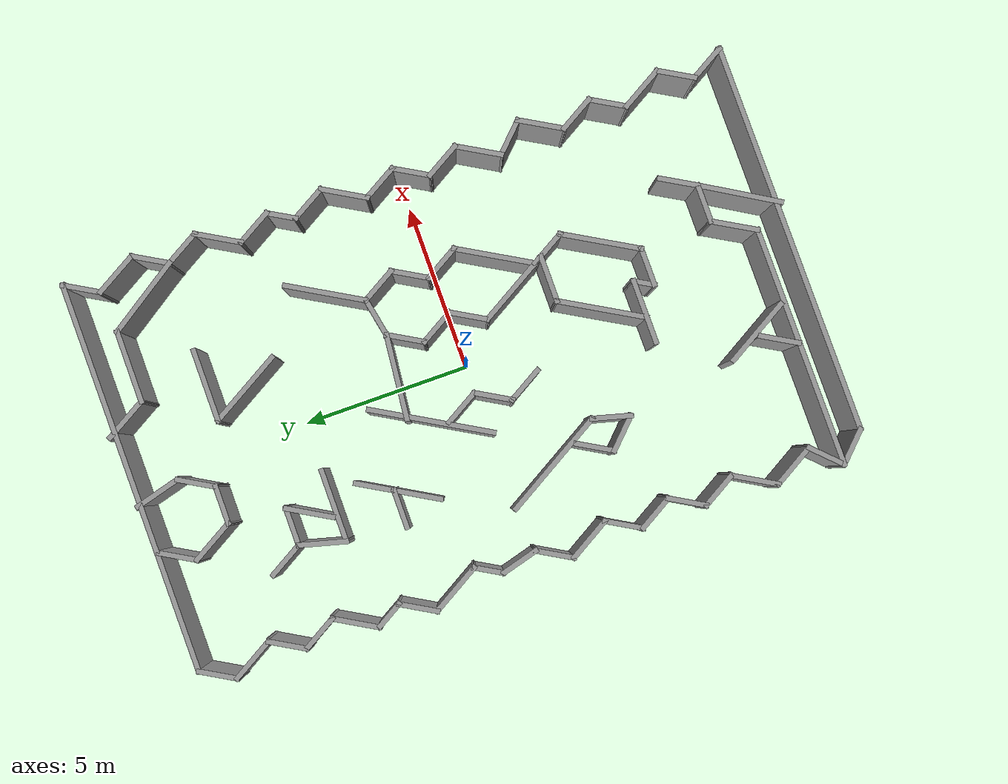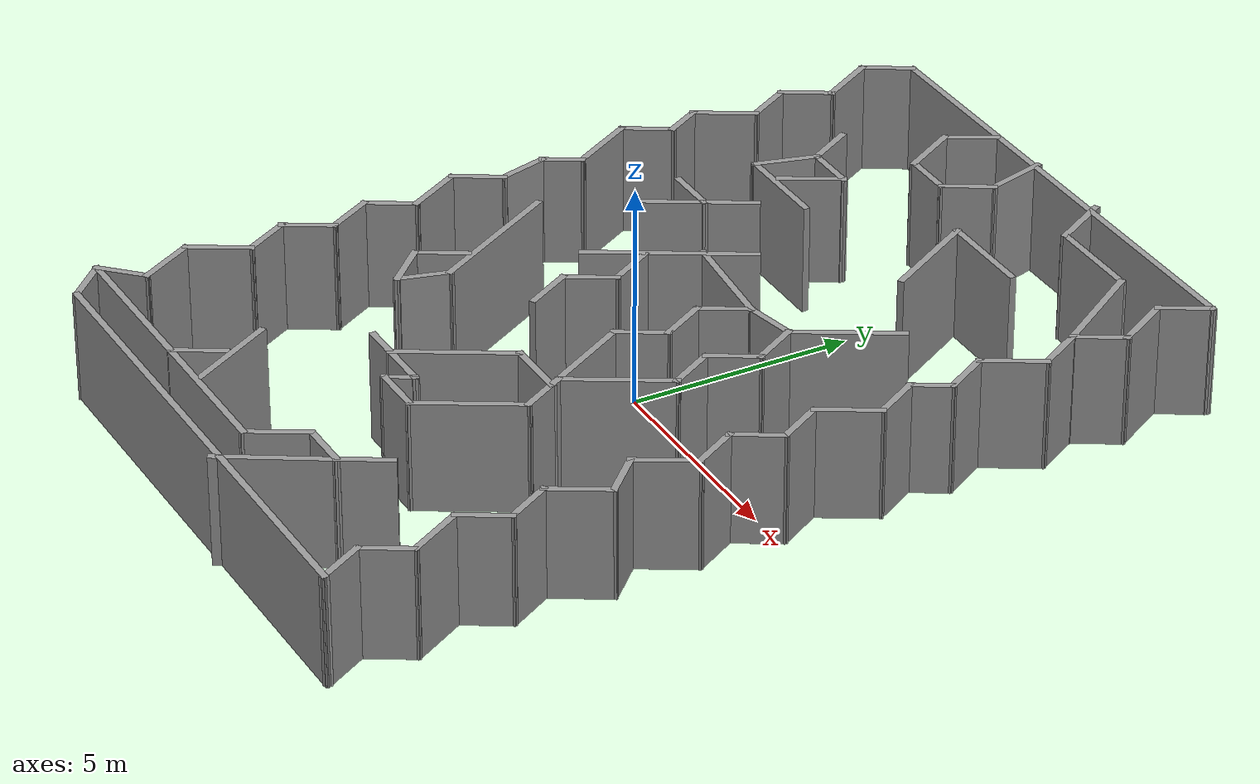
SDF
<sdf version="1.7">
 <model name="maze1">
  <pose>-0.150356 0.100661 0 0 -0 0</pose>
  <link name="Wall_0">
   <collision name="Wall_0_Collision">
    <geometry><box><size>1.25 0.15 2.5</size></box></geometry>
    <pose>0 0 1.25 0 -0 0</pose>
   </collision>
   <visual name="Wall_0_Visual">
    <pose>0 0 1.25 0 -0 0</pose>
    <geometry><box><size>1.25 0.15 2.5</size></box></geometry>
    <material>
     <script><uri>file://media/materials/scripts/gazebo.material</uri><name>Gazebo/Grey</name></script>
     <ambient>1 1 1 1</ambient>
    </material>
    <meta><layer>0</layer></meta>
   </visual>
   <pose>5.80344 9.50329 0 0 -0 -2.0944</pose>
  </link>
  <link name="Wall_1">
   <collision name="Wall_1_Collision">
    <geometry><box><size>1.5 0.15 2.5</size></box></geometry>
    <pose>0 0 1.25 0 -0 0</pose>
   </collision>
   <visual name="Wall_1_Visual">
    <pose>0 0 1.25 0 -0 0</pose>
    <geometry><box><size>1.5 0.15 2.5</size></box></geometry>
    <material>
     <script><uri>file://media/materials/scripts/gazebo.material</uri><name>Gazebo/Grey</name></script>
     <ambient>1 1 1 1</ambient>
    </material>
    <meta><layer>0</layer></meta>
   </visual>
   <pose>5.86594 8.44241 0 0 -0 -1.0472</pose>
  </link>
  <link name="Wall_10">
   <collision name="Wall_10_Collision">
    <geometry><box><size>1.25 0.15 2.5</size></box></geometry>
    <pose>0 0 1.25 0 -0 0</pose>
   </collision>
   <visual name="Wall_10_Visual">
    <pose>0 0 1.25 0 -0 0</pose>
    <geometry><box><size>1.25 0.15 2.5</size></box></geometry>
    <material>
     <script><uri>file://media/materials/scripts/gazebo.material</uri><name>Gazebo/Grey</name></script>
     <ambient>1 1 1 1</ambient>
    </material>
    <meta><layer>0</layer></meta>
   </visual>
   <pose>5.80344 -0.455997 0 0 -0 -2.0944</pose>
  </link>
  <link name="Wall_100">
   <collision name="Wall_100_Collision">
    <geometry><box><size>1.25 0.15 2.5</size></box></geometry>
    <pose>0 0 1.25 0 -0 0</pose>
   </collision>
   <visual name="Wall_100_Visual">
    <pose>0 0 1.25 0 -0 0</pose>
    <geometry><box><size>1.25 0.15 2.5</size></box></geometry>
    <material>
     <script><uri>file://media/materials/scripts/gazebo.material</uri><name>Gazebo/Grey</name></script>
     <ambient>1 1 1 1</ambient>
    </material>
    <meta><layer>0</layer></meta>
   </visual>
   <pose>-1.03557 -1.4542 0 0 -0 2.0944</pose>
  </link>
  <link name="Wall_101">
   <collision name="Wall_101_Collision">
    <geometry><box><size>1.25 0.15 2.5</size></box></geometry>
    <pose>0 0 1.25 0 -0 0</pose>
   </collision>
   <visual name="Wall_101_Visual">
    <pose>0 0 1.25 0 -0 0</pose>
    <geometry><box><size>1.25 0.15 2.5</size></box></geometry>
    <material>
     <script><uri>file://media/materials/scripts/gazebo.material</uri><name>Gazebo/Grey</name></script>
     <ambient>1 1 1 1</ambient>
    </material>
    <meta><layer>0</layer></meta>
   </visual>
   <pose>-1.03557 -0.501571 0 0 -0 1.0472</pose>
  </link>
  <link name="Wall_102">
   <collision name="Wall_102_Collision">
    <geometry><box><size>1.25 0.15 2.5</size></box></geometry>
    <pose>0 0 1.25 0 -0 0</pose>
   </collision>
   <visual name="Wall_102_Visual">
    <pose>0 0 1.25 0 -0 0</pose>
    <geometry><box><size>1.25 0.15 2.5</size></box></geometry>
    <material>
     <script><uri>file://media/materials/scripts/gazebo.material</uri><name>Gazebo/Grey</name></script>
     <ambient>1 1 1 1</ambient>
    </material>
    <meta><layer>0</layer></meta>
   </visual>
   <pose>-1.03557 0.451057 0 0 -0 2.0944</pose>
  </link>
  <link name="Wall_104">
   <collision name="Wall_104_Collision">
    <geometry><box><size>2.60674 0.15 2.5</size></box></geometry>
    <pose>0 0 1.25 0 -0 0</pose>
   </collision>
   <visual name="Wall_104_Visual">
    <pose>0 0 1.25 0 -0 0</pose>
    <geometry><box><size>2.60674 0.15 2.5</size></box></geometry>
    <material>
     <script><uri>file://media/materials/scripts/gazebo.material</uri><name>Gazebo/Grey</name></script>
     <ambient>1 1 1 1</ambient>
    </material>
    <meta><layer>0</layer></meta>
   </visual>
   <pose>0.41476 1.89772 0 0 -0 -0.102998</pose>
  </link>
  <link name="Wall_106">
   <collision name="Wall_106_Collision">
    <geometry><box><size>1.25 0.15 2.5</size></box></geometry>
    <pose>0 0 1.25 0 -0 0</pose>
   </collision>
   <visual name="Wall_106_Visual">
    <pose>0 0 1.25 0 -0 0</pose>
    <geometry><box><size>1.25 0.15 2.5</size></box></geometry>
    <material>
     <script><uri>file://media/materials/scripts/gazebo.material</uri><name>Gazebo/Grey</name></script>
     <ambient>1 1 1 1</ambient>
    </material>
    <meta><layer>0</layer></meta>
   </visual>
   <pose>-3.14158 3.04755 0 0 -0 0</pose>
  </link>
  <link name="Wall_107">
   <collision name="Wall_107_Collision">
    <geometry><box><size>1.25 0.15 2.5</size></box></geometry>
    <pose>0 0 1.25 0 -0 0</pose>
   </collision>
   <visual name="Wall_107_Visual">
    <pose>0 0 1.25 0 -0 0</pose>
    <geometry><box><size>1.25 0.15 2.5</size></box></geometry>
    <material>
     <script><uri>file://media/materials/scripts/gazebo.material</uri><name>Gazebo/Grey</name></script>
     <ambient>1 1 1 1</ambient>
    </material>
    <meta><layer>0</layer></meta>
   </visual>
   <pose>-2.31658 3.52386 0 0 -0 1.0472</pose>
  </link>
  <link name="Wall_109">
   <collision name="Wall_109_Collision">
    <geometry><box><size>1.5 0.15 2.5</size></box></geometry>
    <pose>0 0 1.25 0 -0 0</pose>
   </collision>
   <visual name="Wall_109_Visual">
    <pose>0 0 1.25 0 -0 0</pose>
    <geometry><box><size>1.5 0.15 2.5</size></box></geometry>
    <material>
     <script><uri>file://media/materials/scripts/gazebo.material</uri><name>Gazebo/Grey</name></script>
     <ambient>1 1 1 1</ambient>
    </material>
    <meta><layer>0</layer></meta>
   </visual>
   <pose>-2.92908 2.46298 0 0 -0 -2.0944</pose>
  </link>
  <link name="Wall_11">
   <collision name="Wall_11_Collision">
    <geometry><box><size>1.25 0.15 2.5</size></box></geometry>
    <pose>0 0 1.25 0 -0 0</pose>
   </collision>
   <visual name="Wall_11_Visual">
    <pose>0 0 1.25 0 -0 0</pose>
    <geometry><box><size>1.25 0.15 2.5</size></box></geometry>
    <material>
     <script><uri>file://media/materials/scripts/gazebo.material</uri><name>Gazebo/Grey</name></script>
     <ambient>1 1 1 1</ambient>
    </material>
    <meta><layer>0</layer></meta>
   </visual>
   <pose>5.80344 -1.40863 0 0 -0 -1.0472</pose>
  </link>
  <link name="Wall_12">
   <collision name="Wall_12_Collision">
    <geometry><box><size>1.5 0.15 2.5</size></box></geometry>
    <pose>0 0 1.25 0 -0 0</pose>
   </collision>
   <visual name="Wall_12_Visual">
    <pose>0 0 1.25 0 -0 0</pose>
    <geometry><box><size>1.5 0.15 2.5</size></box></geometry>
    <material>
     <script><uri>file://media/materials/scripts/gazebo.material</uri><name>Gazebo/Grey</name></script>
     <ambient>1 1 1 1</ambient>
    </material>
    <meta><layer>0</layer></meta>
   </visual>
   <pose>5.74094 -2.46951 0 0 -0 -2.0944</pose>
  </link>
  <link name="Wall_13">
   <collision name="Wall_13_Collision">
    <geometry><box><size>1.25 0.15 2.5</size></box></geometry>
    <pose>0 0 1.25 0 -0 0</pose>
   </collision>
   <visual name="Wall_13_Visual">
    <pose>0 0 1.25 0 -0 0</pose>
    <geometry><box><size>1.25 0.15 2.5</size></box></geometry>
    <material>
     <script><uri>file://media/materials/scripts/gazebo.material</uri><name>Gazebo/Grey</name></script>
     <ambient>1 1 1 1</ambient>
    </material>
    <meta><layer>0</layer></meta>
   </visual>
   <pose>5.79235 -3.44298 0 0 -0 -0.785398</pose>
  </link>
  <link name="Wall_14">
   <collision name="Wall_14_Collision">
    <geometry><box><size>1.5 0.15 2.5</size></box></geometry>
    <pose>0 0 1.25 0 -0 0</pose>
   </collision>
   <visual name="Wall_14_Visual">
    <pose>0 0 1.25 0 -0 0</pose>
    <geometry><box><size>1.5 0.15 2.5</size></box></geometry>
    <material>
     <script><uri>file://media/materials/scripts/gazebo.material</uri><name>Gazebo/Grey</name></script>
     <ambient>1 1 1 1</ambient>
    </material>
    <meta><layer>0</layer></meta>
   </visual>
   <pose>5.84376 -4.41646 0 0 -0 -2.0944</pose>
  </link>
  <link name="Wall_15">
   <collision name="Wall_15_Collision">
    <geometry><box><size>1.25 0.15 2.5</size></box></geometry>
    <pose>0 0 1.25 0 -0 0</pose>
   </collision>
   <visual name="Wall_15_Visual">
    <pose>0 0 1.25 0 -0 0</pose>
    <geometry><box><size>1.25 0.15 2.5</size></box></geometry>
    <material>
     <script><uri>file://media/materials/scripts/gazebo.material</uri><name>Gazebo/Grey</name></script>
     <ambient>1 1 1 1</ambient>
    </material>
    <meta><layer>0</layer></meta>
   </visual>
   <pose>5.78126 -5.47734 0 0 -0 -1.0472</pose>
  </link>
  <link name="Wall_16">
   <collision name="Wall_16_Collision">
    <geometry><box><size>1.25 0.15 2.5</size></box></geometry>
    <pose>0 0 1.25 0 -0 0</pose>
   </collision>
   <visual name="Wall_16_Visual">
    <pose>0 0 1.25 0 -0 0</pose>
    <geometry><box><size>1.25 0.15 2.5</size></box></geometry>
    <material>
     <script><uri>file://media/materials/scripts/gazebo.material</uri><name>Gazebo/Grey</name></script>
     <ambient>1 1 1 1</ambient>
    </material>
    <meta><layer>0</layer></meta>
   </visual>
   <pose>5.78126 -6.42997 0 0 -0 -2.0944</pose>
  </link>
  <link name="Wall_17">
   <collision name="Wall_17_Collision">
    <geometry><box><size>1.5 0.15 2.5</size></box></geometry>
    <pose>0 0 1.25 0 -0 0</pose>
   </collision>
   <visual name="Wall_17_Visual">
    <pose>0 0 1.25 0 -0 0</pose>
    <geometry><box><size>1.5 0.15 2.5</size></box></geometry>
    <material>
     <script><uri>file://media/materials/scripts/gazebo.material</uri><name>Gazebo/Grey</name></script>
     <ambient>1 1 1 1</ambient>
    </material>
    <meta><layer>0</layer></meta>
   </visual>
   <pose>5.84376 -7.49085 0 0 -0 -1.0472</pose>
  </link>
  <link name="Wall_18">
   <collision name="Wall_18_Collision">
    <geometry><box><size>1.25 0.15 2.5</size></box></geometry>
    <pose>0 0 1.25 0 -0 0</pose>
   </collision>
   <visual name="Wall_18_Visual">
    <pose>0 0 1.25 0 -0 0</pose>
    <geometry><box><size>1.25 0.15 2.5</size></box></geometry>
    <material>
     <script><uri>file://media/materials/scripts/gazebo.material</uri><name>Gazebo/Grey</name></script>
     <ambient>1 1 1 1</ambient>
    </material>
    <meta><layer>0</layer></meta>
   </visual>
   <pose>5.90626 -8.55173 0 0 -0 -2.0944</pose>
  </link>
  <link name="Wall_19">
   <collision name="Wall_19_Collision">
    <geometry><box><size>1.25 0.15 2.5</size></box></geometry>
    <pose>0 0 1.25 0 -0 0</pose>
   </collision>
   <visual name="Wall_19_Visual">
    <pose>0 0 1.25 0 -0 0</pose>
    <geometry><box><size>1.25 0.15 2.5</size></box></geometry>
    <material>
     <script><uri>file://media/materials/scripts/gazebo.material</uri><name>Gazebo/Grey</name></script>
     <ambient>1 1 1 1</ambient>
    </material>
    <meta><layer>0</layer></meta>
   </visual>
   <pose>5.90626 -9.50436 0 0 -0 -1.0472</pose>
  </link>
  <link name="Wall_2">
   <collision name="Wall_2_Collision">
    <geometry><box><size>1.25 0.15 2.5</size></box></geometry>
    <pose>0 0 1.25 0 -0 0</pose>
   </collision>
   <visual name="Wall_2_Visual">
    <pose>0 0 1.25 0 -0 0</pose>
    <geometry><box><size>1.25 0.15 2.5</size></box></geometry>
    <material>
     <script><uri>file://media/materials/scripts/gazebo.material</uri><name>Gazebo/Grey</name></script>
     <ambient>1 1 1 1</ambient>
    </material>
    <meta><layer>0</layer></meta>
   </visual>
   <pose>5.92844 7.38153 0 0 -0 -2.0944</pose>
  </link>
  <link name="Wall_20">
   <collision name="Wall_20_Collision">
    <geometry><box><size>11.75 0.15 2.5</size></box></geometry>
    <pose>0 0 1.25 0 -0 0</pose>
   </collision>
   <visual name="Wall_20_Visual">
    <pose>0 0 1.25 0 -0 0</pose>
    <geometry><box><size>11.75 0.15 2.5</size></box></geometry>
    <material>
     <script><uri>file://media/materials/scripts/gazebo.material</uri><name>Gazebo/Grey</name></script>
     <ambient>1 1 1 1</ambient>
    </material>
    <meta><layer>0</layer></meta>
   </visual>
   <pose>0.381259 -9.98067 0 0 -0 3.14159</pose>
  </link>
  <link name="Wall_21">
   <collision name="Wall_21_Collision">
    <geometry><box><size>1.25 0.15 2.5</size></box></geometry>
    <pose>0 0 1.25 0 -0 0</pose>
   </collision>
   <visual name="Wall_21_Visual">
    <pose>0 0 1.25 0 -0 0</pose>
    <geometry><box><size>1.25 0.15 2.5</size></box></geometry>
    <material>
     <script><uri>file://media/materials/scripts/gazebo.material</uri><name>Gazebo/Grey</name></script>
     <ambient>1 1 1 1</ambient>
    </material>
    <meta><layer>0</layer></meta>
   </visual>
   <pose>-5.80765 -9.59176 0 0 -0 2.35619</pose>
  </link>
  <link name="Wall_22">
   <collision name="Wall_22_Collision">
    <geometry><box><size>1.25 0.15 2.5</size></box></geometry>
    <pose>0 0 1.25 0 -0 0</pose>
   </collision>
   <visual name="Wall_22_Visual">
    <pose>0 0 1.25 0 -0 0</pose>
    <geometry><box><size>1.25 0.15 2.5</size></box></geometry>
    <material>
     <script><uri>file://media/materials/scripts/gazebo.material</uri><name>Gazebo/Grey</name></script>
     <ambient>1 1 1 1</ambient>
    </material>
    <meta><layer>0</layer></meta>
   </visual>
   <pose>-5.80765 -8.81395 0 0 -0 0.785398</pose>
  </link>
  <link name="Wall_23">
   <collision name="Wall_23_Collision">
    <geometry><box><size>1.5 0.15 2.5</size></box></geometry>
    <pose>0 0 1.25 0 -0 0</pose>
   </collision>
   <visual name="Wall_23_Visual">
    <pose>0 0 1.25 0 -0 0</pose>
    <geometry><box><size>1.5 0.15 2.5</size></box></geometry>
    <material>
     <script><uri>file://media/materials/scripts/gazebo.material</uri><name>Gazebo/Grey</name></script>
     <ambient>1 1 1 1</ambient>
    </material>
    <meta><layer>0</layer></meta>
   </visual>
   <pose>-5.75624 -7.84047 0 0 -0 2.0944</pose>
  </link>
  <link name="Wall_24">
   <collision name="Wall_24_Collision">
    <geometry><box><size>1.5 0.15 2.5</size></box></geometry>
    <pose>0 0 1.25 0 -0 0</pose>
   </collision>
   <visual name="Wall_24_Visual">
    <pose>0 0 1.25 0 -0 0</pose>
    <geometry><box><size>1.5 0.15 2.5</size></box></geometry>
    <material>
     <script><uri>file://media/materials/scripts/gazebo.material</uri><name>Gazebo/Grey</name></script>
     <ambient>1 1 1 1</ambient>
    </material>
    <meta><layer>0</layer></meta>
   </visual>
   <pose>-5.75624 -6.67134 0 0 -0 1.0472</pose>
  </link>
  <link name="Wall_25">
   <collision name="Wall_25_Collision">
    <geometry><box><size>1.25 0.15 2.5</size></box></geometry>
    <pose>0 0 1.25 0 -0 0</pose>
   </collision>
   <visual name="Wall_25_Visual">
    <pose>0 0 1.25 0 -0 0</pose>
    <geometry><box><size>1.25 0.15 2.5</size></box></geometry>
    <material>
     <script><uri>file://media/materials/scripts/gazebo.material</uri><name>Gazebo/Grey</name></script>
     <ambient>1 1 1 1</ambient>
    </material>
    <meta><layer>0</layer></meta>
   </visual>
   <pose>-5.69374 -5.61045 0 0 -0 2.0944</pose>
  </link>
  <link name="Wall_26">
   <collision name="Wall_26_Collision">
    <geometry><box><size>1.25 0.15 2.5</size></box></geometry>
    <pose>0 0 1.25 0 -0 0</pose>
   </collision>
   <visual name="Wall_26_Visual">
    <pose>0 0 1.25 0 -0 0</pose>
    <geometry><box><size>1.25 0.15 2.5</size></box></geometry>
    <material>
     <script><uri>file://media/materials/scripts/gazebo.material</uri><name>Gazebo/Grey</name></script>
     <ambient>1 1 1 1</ambient>
    </material>
    <meta><layer>0</layer></meta>
   </visual>
   <pose>-5.69374 -4.65782 0 0 -0 1.0472</pose>
  </link>
  <link name="Wall_27">
   <collision name="Wall_27_Collision">
    <geometry><box><size>1.25 0.15 2.5</size></box></geometry>
    <pose>0 0 1.25 0 -0 0</pose>
   </collision>
   <visual name="Wall_27_Visual">
    <pose>0 0 1.25 0 -0 0</pose>
    <geometry><box><size>1.25 0.15 2.5</size></box></geometry>
    <material>
     <script><uri>file://media/materials/scripts/gazebo.material</uri><name>Gazebo/Grey</name></script>
     <ambient>1 1 1 1</ambient>
    </material>
    <meta><layer>0</layer></meta>
   </visual>
   <pose>-5.69374 -3.7052 0 0 -0 2.0944</pose>
  </link>
  <link name="Wall_28">
   <collision name="Wall_28_Collision">
    <geometry><box><size>1.25 0.15 2.5</size></box></geometry>
    <pose>0 0 1.25 0 -0 0</pose>
   </collision>
   <visual name="Wall_28_Visual">
    <pose>0 0 1.25 0 -0 0</pose>
    <geometry><box><size>1.25 0.15 2.5</size></box></geometry>
    <material>
     <script><uri>file://media/materials/scripts/gazebo.material</uri><name>Gazebo/Grey</name></script>
     <ambient>1 1 1 1</ambient>
    </material>
    <meta><layer>0</layer></meta>
   </visual>
   <pose>-5.69374 -2.75257 0 0 -0 1.0472</pose>
  </link>
  <link name="Wall_29">
   <collision name="Wall_29_Collision">
    <geometry><box><size>1.5 0.15 2.5</size></box></geometry>
    <pose>0 0 1.25 0 -0 0</pose>
   </collision>
   <visual name="Wall_29_Visual">
    <pose>0 0 1.25 0 -0 0</pose>
    <geometry><box><size>1.5 0.15 2.5</size></box></geometry>
    <material>
     <script><uri>file://media/materials/scripts/gazebo.material</uri><name>Gazebo/Grey</name></script>
     <ambient>1 1 1 1</ambient>
    </material>
    <meta><layer>0</layer></meta>
   </visual>
   <pose>-5.75624 -1.69169 0 0 -0 2.0944</pose>
  </link>
  <link name="Wall_3">
   <collision name="Wall_3_Collision">
    <geometry><box><size>1.25 0.15 2.5</size></box></geometry>
    <pose>0 0 1.25 0 -0 0</pose>
   </collision>
   <visual name="Wall_3_Visual">
    <pose>0 0 1.25 0 -0 0</pose>
    <geometry><box><size>1.25 0.15 2.5</size></box></geometry>
    <material>
     <script><uri>file://media/materials/scripts/gazebo.material</uri><name>Gazebo/Grey</name></script>
     <ambient>1 1 1 1</ambient>
    </material>
    <meta><layer>0</layer></meta>
   </visual>
   <pose>5.92844 6.42891 0 0 -0 -1.0472</pose>
  </link>
  <link name="Wall_30">
   <collision name="Wall_30_Collision">
    <geometry><box><size>1.25 0.15 2.5</size></box></geometry>
    <pose>0 0 1.25 0 -0 0</pose>
   </collision>
   <visual name="Wall_30_Visual">
    <pose>0 0 1.25 0 -0 0</pose>
    <geometry><box><size>1.25 0.15 2.5</size></box></geometry>
    <material>
     <script><uri>file://media/materials/scripts/gazebo.material</uri><name>Gazebo/Grey</name></script>
     <ambient>1 1 1 1</ambient>
    </material>
    <meta><layer>0</layer></meta>
   </visual>
   <pose>-5.81874 -0.630807 0 0 -0 1.0472</pose>
  </link>
  <link name="Wall_31">
   <collision name="Wall_31_Collision">
    <geometry><box><size>1.25 0.15 2.5</size></box></geometry>
    <pose>0 0 1.25 0 -0 0</pose>
   </collision>
   <visual name="Wall_31_Visual">
    <pose>0 0 1.25 0 -0 0</pose>
    <geometry><box><size>1.25 0.15 2.5</size></box></geometry>
    <material>
     <script><uri>file://media/materials/scripts/gazebo.material</uri><name>Gazebo/Grey</name></script>
     <ambient>1 1 1 1</ambient>
    </material>
    <meta><layer>0</layer></meta>
   </visual>
   <pose>-5.68609 0.376766 0 0 -0 1.8326</pose>
  </link>
  <link name="Wall_32">
   <collision name="Wall_32_Collision">
    <geometry><box><size>1 0.15 2.5</size></box></geometry>
    <pose>0 0 1.25 0 -0 0</pose>
   </collision>
   <visual name="Wall_32_Visual">
    <pose>0 0 1.25 0 -0 0</pose>
    <geometry><box><size>1 0.15 2.5</size></box></geometry>
    <material>
     <script><uri>file://media/materials/scripts/gazebo.material</uri><name>Gazebo/Grey</name></script>
     <ambient>1 1 1 1</ambient>
    </material>
    <meta><layer>0</layer></meta>
   </visual>
   <pose>-5.61594 1.27609 0 0 -0 1.0472</pose>
  </link>
  <link name="Wall_33">
   <collision name="Wall_33_Collision">
    <geometry><box><size>1.75 0.15 2.5</size></box></geometry>
    <pose>0 0 1.25 0 -0 0</pose>
   </collision>
   <visual name="Wall_33_Visual">
    <pose>0 0 1.25 0 -0 0</pose>
    <geometry><box><size>1.75 0.15 2.5</size></box></geometry>
    <material>
     <script><uri>file://media/materials/scripts/gazebo.material</uri><name>Gazebo/Grey</name></script>
     <ambient>1 1 1 1</ambient>
    </material>
    <meta><layer>0</layer></meta>
   </visual>
   <pose>-5.80344 2.33697 0 0 -0 2.0944</pose>
  </link>
  <link name="Wall_34">
   <collision name="Wall_34_Collision">
    <geometry><box><size>1.25 0.15 2.5</size></box></geometry>
    <pose>0 0 1.25 0 -0 0</pose>
   </collision>
   <visual name="Wall_34_Visual">
    <pose>0 0 1.25 0 -0 0</pose>
    <geometry><box><size>1.25 0.15 2.5</size></box></geometry>
    <material>
     <script><uri>file://media/materials/scripts/gazebo.material</uri><name>Gazebo/Grey</name></script>
     <ambient>1 1 1 1</ambient>
    </material>
    <meta><layer>0</layer></meta>
   </visual>
   <pose>-5.92844 3.5061 0 0 -0 1.0472</pose>
  </link>
  <link name="Wall_35">
   <collision name="Wall_35_Collision">
    <geometry><box><size>1 0.15 2.5</size></box></geometry>
    <pose>0 0 1.25 0 -0 0</pose>
   </collision>
   <visual name="Wall_35_Visual">
    <pose>0 0 1.25 0 -0 0</pose>
    <geometry><box><size>1 0.15 2.5</size></box></geometry>
    <material>
     <script><uri>file://media/materials/scripts/gazebo.material</uri><name>Gazebo/Grey</name></script>
     <ambient>1 1 1 1</ambient>
    </material>
    <meta><layer>0</layer></meta>
   </visual>
   <pose>-5.86594 4.35048 0 0 -0 2.0944</pose>
  </link>
  <link name="Wall_36">
   <collision name="Wall_36_Collision">
    <geometry><box><size>1.5 0.15 2.5</size></box></geometry>
    <pose>0 0 1.25 0 -0 0</pose>
   </collision>
   <visual name="Wall_36_Visual">
    <pose>0 0 1.25 0 -0 0</pose>
    <geometry><box><size>1.5 0.15 2.5</size></box></geometry>
    <material>
     <script><uri>file://media/materials/scripts/gazebo.material</uri><name>Gazebo/Grey</name></script>
     <ambient>1 1 1 1</ambient>
    </material>
    <meta><layer>0</layer></meta>
   </visual>
   <pose>-5.74094 5.3031 0 0 -0 1.0472</pose>
  </link>
  <link name="Wall_37">
   <collision name="Wall_37_Collision">
    <geometry><box><size>1.25 0.15 2.5</size></box></geometry>
    <pose>0 0 1.25 0 -0 0</pose>
   </collision>
   <visual name="Wall_37_Visual">
    <pose>0 0 1.25 0 -0 0</pose>
    <geometry><box><size>1.25 0.15 2.5</size></box></geometry>
    <material>
     <script><uri>file://media/materials/scripts/gazebo.material</uri><name>Gazebo/Grey</name></script>
     <ambient>1 1 1 1</ambient>
    </material>
    <meta><layer>0</layer></meta>
   </visual>
   <pose>-5.67844 6.36398 0 0 -0 2.0944</pose>
  </link>
  <link name="Wall_38">
   <collision name="Wall_38_Collision">
    <geometry><box><size>1.25 0.15 2.5</size></box></geometry>
    <pose>0 0 1.25 0 -0 0</pose>
   </collision>
   <visual name="Wall_38_Visual">
    <pose>0 0 1.25 0 -0 0</pose>
    <geometry><box><size>1.25 0.15 2.5</size></box></geometry>
    <material>
     <script><uri>file://media/materials/scripts/gazebo.material</uri><name>Gazebo/Grey</name></script>
     <ambient>1 1 1 1</ambient>
    </material>
    <meta><layer>0</layer></meta>
   </visual>
   <pose>-5.67844 7.31661 0 0 -0 1.0472</pose>
  </link>
  <link name="Wall_39">
   <collision name="Wall_39_Collision">
    <geometry><box><size>1.5 0.15 2.5</size></box></geometry>
    <pose>0 0 1.25 0 -0 0</pose>
   </collision>
   <visual name="Wall_39_Visual">
    <pose>0 0 1.25 0 -0 0</pose>
    <geometry><box><size>1.5 0.15 2.5</size></box></geometry>
    <material>
     <script><uri>file://media/materials/scripts/gazebo.material</uri><name>Gazebo/Grey</name></script>
     <ambient>1 1 1 1</ambient>
    </material>
    <meta><layer>0</layer></meta>
   </visual>
   <pose>-5.74094 8.37749 0 0 -0 2.0944</pose>
  </link>
  <link name="Wall_4">
   <collision name="Wall_4_Collision">
    <geometry><box><size>1.5 0.15 2.5</size></box></geometry>
    <pose>0 0 1.25 0 -0 0</pose>
   </collision>
   <visual name="Wall_4_Visual">
    <pose>0 0 1.25 0 -0 0</pose>
    <geometry><box><size>1.5 0.15 2.5</size></box></geometry>
    <material>
     <script><uri>file://media/materials/scripts/gazebo.material</uri><name>Gazebo/Grey</name></script>
     <ambient>1 1 1 1</ambient>
    </material>
    <meta><layer>0</layer></meta>
   </visual>
   <pose>5.86594 5.36802 0 0 -0 -2.0944</pose>
  </link>
  <link name="Wall_40">
   <collision name="Wall_40_Collision">
    <geometry><box><size>1.25 0.15 2.5</size></box></geometry>
    <pose>0 0 1.25 0 -0 0</pose>
   </collision>
   <visual name="Wall_40_Visual">
    <pose>0 0 1.25 0 -0 0</pose>
    <geometry><box><size>1.25 0.15 2.5</size></box></geometry>
    <material>
     <script><uri>file://media/materials/scripts/gazebo.material</uri><name>Gazebo/Grey</name></script>
     <ambient>1 1 1 1</ambient>
    </material>
    <meta><layer>0</layer></meta>
   </visual>
   <pose>-5.80344 9.43838 0 0 -0 1.0472</pose>
  </link>
  <link name="Wall_41">
   <collision name="Wall_41_Collision">
    <geometry><box><size>11.7571 0.15 2.5</size></box></geometry>
    <pose>0 0 1.25 0 -0 0</pose>
   </collision>
   <visual name="Wall_41_Visual">
    <pose>0 0 1.25 0 -0 0</pose>
    <geometry><box><size>11.7571 0.15 2.5</size></box></geometry>
    <material>
     <script><uri>file://media/materials/scripts/gazebo.material</uri><name>Gazebo/Grey</name></script>
     <ambient>1 1 1 1</ambient>
    </material>
    <meta><layer>0</layer></meta>
   </visual>
   <pose>0.275 9.94715 0 0 -0 0.005593</pose>
  </link>
  <link name="Wall_43">
   <collision name="Wall_43_Collision">
    <geometry><box><size>7.25 0.15 2.5</size></box></geometry>
    <pose>0 0 1.25 0 -0 0</pose>
   </collision>
   <visual name="Wall_43_Visual">
    <pose>0 0 1.25 0 -0 0</pose>
    <geometry><box><size>7.25 0.15 2.5</size></box></geometry>
    <material>
     <script><uri>file://media/materials/scripts/gazebo.material</uri><name>Gazebo/Grey</name></script>
     <ambient>1 1 1 1</ambient>
    </material>
    <meta><layer>0</layer></meta>
   </visual>
   <pose>-2.64656 -9.20285 0 0 -0 0</pose>
  </link>
  <link name="Wall_44">
   <collision name="Wall_44_Collision">
    <geometry><box><size>1.5 0.15 2.5</size></box></geometry>
    <pose>0 0 1.25 0 -0 0</pose>
   </collision>
   <visual name="Wall_44_Visual">
    <pose>0 0 1.25 0 -0 0</pose>
    <geometry><box><size>1.5 0.15 2.5</size></box></geometry>
    <material>
     <script><uri>file://media/materials/scripts/gazebo.material</uri><name>Gazebo/Grey</name></script>
     <ambient>1 1 1 1</ambient>
    </material>
    <meta><layer>0</layer></meta>
   </visual>
   <pose>1.24094 -8.61829 0 0 -0 1.0472</pose>
  </link>
  <link name="Wall_45">
   <collision name="Wall_45_Collision">
    <geometry><box><size>1.25 0.15 2.5</size></box></geometry>
    <pose>0 0 1.25 0 -0 0</pose>
   </collision>
   <visual name="Wall_45_Visual">
    <pose>0 0 1.25 0 -0 0</pose>
    <geometry><box><size>1.25 0.15 2.5</size></box></geometry>
    <material>
     <script><uri>file://media/materials/scripts/gazebo.material</uri><name>Gazebo/Grey</name></script>
     <ambient>1 1 1 1</ambient>
    </material>
    <meta><layer>0</layer></meta>
   </visual>
   <pose>2.12844 -8.03372 0 0 -0 0</pose>
  </link>
  <link name="Wall_46">
   <collision name="Wall_46_Collision">
    <geometry><box><size>1.25 0.15 2.5</size></box></geometry>
    <pose>0 0 1.25 0 -0 0</pose>
   </collision>
   <visual name="Wall_46_Visual">
    <pose>0 0 1.25 0 -0 0</pose>
    <geometry><box><size>1.25 0.15 2.5</size></box></geometry>
    <material>
     <script><uri>file://media/materials/scripts/gazebo.material</uri><name>Gazebo/Grey</name></script>
     <ambient>1 1 1 1</ambient>
    </material>
    <meta><layer>0</layer></meta>
   </visual>
   <pose>2.95344 -7.55741 0 0 -0 1.0472</pose>
  </link>
  <link name="Wall_48">
   <collision name="Wall_48_Collision">
    <geometry><box><size>2.58223 0.15 2.5</size></box></geometry>
    <pose>0 0 1.25 0 -0 0</pose>
   </collision>
   <visual name="Wall_48_Visual">
    <pose>0 0 1.25 0 -0 0</pose>
    <geometry><box><size>2.58223 0.15 2.5</size></box></geometry>
    <material>
     <script><uri>file://media/materials/scripts/gazebo.material</uri><name>Gazebo/Grey</name></script>
     <ambient>1 1 1 1</ambient>
    </material>
    <meta><layer>0</layer></meta>
   </visual>
   <pose>2.05225 -9.07622 0 0 -0 1.02989</pose>
  </link>
  <link name="Wall_5">
   <collision name="Wall_5_Collision">
    <geometry><box><size>1.25 0.15 2.5</size></box></geometry>
    <pose>0 0 1.25 0 -0 0</pose>
   </collision>
   <visual name="Wall_5_Visual">
    <pose>0 0 1.25 0 -0 0</pose>
    <geometry><box><size>1.25 0.15 2.5</size></box></geometry>
    <material>
     <script><uri>file://media/materials/scripts/gazebo.material</uri><name>Gazebo/Grey</name></script>
     <ambient>1 1 1 1</ambient>
    </material>
    <meta><layer>0</layer></meta>
   </visual>
   <pose>5.80344 4.30714 0 0 -0 -1.0472</pose>
  </link>
  <link name="Wall_50">
   <collision name="Wall_50_Collision">
    <geometry><box><size>2.25 0.15 2.5</size></box></geometry>
    <pose>0 0 1.25 0 -0 0</pose>
   </collision>
   <visual name="Wall_50_Visual">
    <pose>0 0 1.25 0 -0 0</pose>
    <geometry><box><size>2.25 0.15 2.5</size></box></geometry>
    <material>
     <script><uri>file://media/materials/scripts/gazebo.material</uri><name>Gazebo/Grey</name></script>
     <ambient>1 1 1 1</ambient>
    </material>
    <meta><layer>0</layer></meta>
   </visual>
   <pose>-1.84386 -8.18587 0 0 -0 2.0944</pose>
  </link>
  <link name="Wall_52">
   <collision name="Wall_52_Collision">
    <geometry><box><size>1.25 0.15 2.5</size></box></geometry>
    <pose>0 0 1.25 0 -0 0</pose>
   </collision>
   <visual name="Wall_52_Visual">
    <pose>0 0 1.25 0 -0 0</pose>
    <geometry><box><size>1.25 0.15 2.5</size></box></geometry>
    <material>
     <script><uri>file://media/materials/scripts/gazebo.material</uri><name>Gazebo/Grey</name></script>
     <ambient>1 1 1 1</ambient>
    </material>
    <meta><layer>0</layer></meta>
   </visual>
   <pose>-2.25348 -8.71193 0 0 -0 1.0472</pose>
  </link>
  <link name="Wall_54">
   <collision name="Wall_54_Collision">
    <geometry><box><size>3.5 0.15 2.5</size></box></geometry>
    <pose>0 0 1.25 0 -0 0</pose>
   </collision>
   <visual name="Wall_54_Visual">
    <pose>0 0 1.25 0 -0 0</pose>
    <geometry><box><size>3.5 0.15 2.5</size></box></geometry>
    <material>
     <script><uri>file://media/materials/scripts/gazebo.material</uri><name>Gazebo/Grey</name></script>
     <ambient>1 1 1 1</ambient>
    </material>
    <meta><layer>0</layer></meta>
   </visual>
   <pose>-3.41237 -1.47362 0 0 -0 -1.0472</pose>
  </link>
  <link name="Wall_55">
   <collision name="Wall_55_Collision">
    <geometry><box><size>1.25 0.15 2.5</size></box></geometry>
    <pose>0 0 1.25 0 -0 0</pose>
   </collision>
   <visual name="Wall_55_Visual">
    <pose>0 0 1.25 0 -0 0</pose>
    <geometry><box><size>1.25 0.15 2.5</size></box></geometry>
    <material>
     <script><uri>file://media/materials/scripts/gazebo.material</uri><name>Gazebo/Grey</name></script>
     <ambient>1 1 1 1</ambient>
    </material>
    <meta><layer>0</layer></meta>
   </visual>
   <pose>-2.71722 -3.45548 0 0 -0 -1.8326</pose>
  </link>
  <link name="Wall_56">
   <collision name="Wall_56_Collision">
    <geometry><box><size>1.25 0.15 2.5</size></box></geometry>
    <pose>0 0 1.25 0 -0 0</pose>
   </collision>
   <visual name="Wall_56_Visual">
    <pose>0 0 1.25 0 -0 0</pose>
    <geometry><box><size>1.25 0.15 2.5</size></box></geometry>
    <material>
     <script><uri>file://media/materials/scripts/gazebo.material</uri><name>Gazebo/Grey</name></script>
     <ambient>1 1 1 1</ambient>
    </material>
    <meta><layer>0</layer></meta>
   </visual>
   <pose>-3.24848 -3.59783 0 0 -0 2.35619</pose>
  </link>
  <link name="Wall_57">
   <collision name="Wall_57_Collision">
    <geometry><box><size>1.25 0.15 2.5</size></box></geometry>
    <pose>0 0 1.25 0 -0 0</pose>
   </collision>
   <visual name="Wall_57_Visual">
    <pose>0 0 1.25 0 -0 0</pose>
    <geometry><box><size>1.25 0.15 2.5</size></box></geometry>
    <material>
     <script><uri>file://media/materials/scripts/gazebo.material</uri><name>Gazebo/Grey</name></script>
     <ambient>1 1 1 1</ambient>
    </material>
    <meta><layer>0</layer></meta>
   </visual>
   <pose>-3.36239 -2.7326 0 0 -0 1.0472</pose>
  </link>
  <link name="Wall_59">
   <collision name="Wall_59_Collision">
    <geometry><box><size>1.25 0.15 2.5</size></box></geometry>
    <pose>0 0 1.25 0 -0 0</pose>
   </collision>
   <visual name="Wall_59_Visual">
    <pose>0 0 1.25 0 -0 0</pose>
    <geometry><box><size>1.25 0.15 2.5</size></box></geometry>
    <material>
     <script><uri>file://media/materials/scripts/gazebo.material</uri><name>Gazebo/Grey</name></script>
     <ambient>1 1 1 1</ambient>
    </material>
    <meta><layer>0</layer></meta>
   </visual>
   <pose>-3.41658 6.57229 0 0 -0 -1.0472</pose>
  </link>
  <link name="Wall_6">
   <collision name="Wall_6_Collision">
    <geometry><box><size>1 0.15 2.5</size></box></geometry>
    <pose>0 0 1.25 0 -0 0</pose>
   </collision>
   <visual name="Wall_6_Visual">
    <pose>0 0 1.25 0 -0 0</pose>
    <geometry><box><size>1 0.15 2.5</size></box></geometry>
    <material>
     <script><uri>file://media/materials/scripts/gazebo.material</uri><name>Gazebo/Grey</name></script>
     <ambient>1 1 1 1</ambient>
    </material>
    <meta><layer>0</layer></meta>
   </visual>
   <pose>5.86594 3.46277 0 0 -0 -2.0944</pose>
  </link>
  <link name="Wall_60">
   <collision name="Wall_60_Collision">
    <geometry><box><size>1.5 0.15 2.5</size></box></geometry>
    <pose>0 0 1.25 0 -0 0</pose>
   </collision>
   <visual name="Wall_60_Visual">
    <pose>0 0 1.25 0 -0 0</pose>
    <geometry><box><size>1.5 0.15 2.5</size></box></geometry>
    <material>
     <script><uri>file://media/materials/scripts/gazebo.material</uri><name>Gazebo/Grey</name></script>
     <ambient>1 1 1 1</ambient>
    </material>
    <meta><layer>0</layer></meta>
   </visual>
   <pose>-3.31628 5.44397 0 0 -0 -1.8326</pose>
  </link>
  <link name="Wall_61">
   <collision name="Wall_61_Collision">
    <geometry><box><size>2.25 0.15 2.5</size></box></geometry>
    <pose>0 0 1.25 0 -0 0</pose>
   </collision>
   <visual name="Wall_61_Visual">
    <pose>0 0 1.25 0 -0 0</pose>
    <geometry><box><size>2.25 0.15 2.5</size></box></geometry>
    <material>
     <script><uri>file://media/materials/scripts/gazebo.material</uri><name>Gazebo/Grey</name></script>
     <ambient>1 1 1 1</ambient>
    </material>
    <meta><layer>0</layer></meta>
   </visual>
   <pose>-2.44099 4.79197 0 0 -0 0</pose>
  </link>
  <link name="Wall_63">
   <collision name="Wall_63_Collision">
    <geometry><box><size>1.25 0.15 2.5</size></box></geometry>
    <pose>0 0 1.25 0 -0 0</pose>
   </collision>
   <visual name="Wall_63_Visual">
    <pose>0 0 1.25 0 -0 0</pose>
    <geometry><box><size>1.25 0.15 2.5</size></box></geometry>
    <material>
     <script><uri>file://media/materials/scripts/gazebo.material</uri><name>Gazebo/Grey</name></script>
     <ambient>1 1 1 1</ambient>
    </material>
    <meta><layer>0</layer></meta>
   </visual>
   <pose>-2.59158 6.09597 0 0 -0 0</pose>
  </link>
  <link name="Wall_64">
   <collision name="Wall_64_Collision">
    <geometry><box><size>1.5 0.15 2.5</size></box></geometry>
    <pose>0 0 1.25 0 -0 0</pose>
   </collision>
   <visual name="Wall_64_Visual">
    <pose>0 0 1.25 0 -0 0</pose>
    <geometry><box><size>1.5 0.15 2.5</size></box></geometry>
    <material>
     <script><uri>file://media/materials/scripts/gazebo.material</uri><name>Gazebo/Grey</name></script>
     <ambient>1 1 1 1</ambient>
    </material>
    <meta><layer>0</layer></meta>
   </visual>
   <pose>-2.37908 5.51141 0 0 -0 -2.0944</pose>
  </link>
  <link name="Wall_66">
   <collision name="Wall_66_Collision">
    <geometry><box><size>1.25 0.15 2.5</size></box></geometry>
    <pose>0 0 1.25 0 -0 0</pose>
   </collision>
   <visual name="Wall_66_Visual">
    <pose>0 0 1.25 0 -0 0</pose>
    <geometry><box><size>1.25 0.15 2.5</size></box></geometry>
    <material>
     <script><uri>file://media/materials/scripts/gazebo.material</uri><name>Gazebo/Grey</name></script>
     <ambient>1 1 1 1</ambient>
    </material>
    <meta><layer>0</layer></meta>
   </visual>
   <pose>-2.29172 9.41025 0 0 -0 -2.0944</pose>
  </link>
  <link name="Wall_67">
   <collision name="Wall_67_Collision">
    <geometry><box><size>1.5 0.15 2.5</size></box></geometry>
    <pose>0 0 1.25 0 -0 0</pose>
   </collision>
   <visual name="Wall_67_Visual">
    <pose>0 0 1.25 0 -0 0</pose>
    <geometry><box><size>1.5 0.15 2.5</size></box></geometry>
    <material>
     <script><uri>file://media/materials/scripts/gazebo.material</uri><name>Gazebo/Grey</name></script>
     <ambient>1 1 1 1</ambient>
    </material>
    <meta><layer>0</layer></meta>
   </visual>
   <pose>-2.22922 8.34937 0 0 -0 -1.0472</pose>
  </link>
  <link name="Wall_68">
   <collision name="Wall_68_Collision">
    <geometry><box><size>1.25 0.15 2.5</size></box></geometry>
    <pose>0 0 1.25 0 -0 0</pose>
   </collision>
   <visual name="Wall_68_Visual">
    <pose>0 0 1.25 0 -0 0</pose>
    <geometry><box><size>1.25 0.15 2.5</size></box></geometry>
    <material>
     <script><uri>file://media/materials/scripts/gazebo.material</uri><name>Gazebo/Grey</name></script>
     <ambient>1 1 1 1</ambient>
    </material>
    <meta><layer>0</layer></meta>
   </visual>
   <pose>-1.34172 7.7648 0 0 -0 0</pose>
  </link>
  <link name="Wall_69">
   <collision name="Wall_69_Collision">
    <geometry><box><size>1.25 0.15 2.5</size></box></geometry>
    <pose>0 0 1.25 0 -0 0</pose>
   </collision>
   <visual name="Wall_69_Visual">
    <pose>0 0 1.25 0 -0 0</pose>
    <geometry><box><size>1.25 0.15 2.5</size></box></geometry>
    <material>
     <script><uri>file://media/materials/scripts/gazebo.material</uri><name>Gazebo/Grey</name></script>
     <ambient>1 1 1 1</ambient>
    </material>
    <meta><layer>0</layer></meta>
   </visual>
   <pose>-0.516719 8.24111 0 0 -0 1.0472</pose>
  </link>
  <link name="Wall_7">
   <collision name="Wall_7_Collision">
    <geometry><box><size>1.25 0.15 2.5</size></box></geometry>
    <pose>0 0 1.25 0 -0 0</pose>
   </collision>
   <visual name="Wall_7_Visual">
    <pose>0 0 1.25 0 -0 0</pose>
    <geometry><box><size>1.25 0.15 2.5</size></box></geometry>
    <material>
     <script><uri>file://media/materials/scripts/gazebo.material</uri><name>Gazebo/Grey</name></script>
     <ambient>1 1 1 1</ambient>
    </material>
    <meta><layer>0</layer></meta>
   </visual>
   <pose>5.92844 2.61839 0 0 -0 -1.0472</pose>
  </link>
  <link name="Wall_70">
   <collision name="Wall_70_Collision">
    <geometry><box><size>1.5 0.15 2.5</size></box></geometry>
    <pose>0 0 1.25 0 -0 0</pose>
   </collision>
   <visual name="Wall_70_Visual">
    <pose>0 0 1.25 0 -0 0</pose>
    <geometry><box><size>1.5 0.15 2.5</size></box></geometry>
    <material>
     <script><uri>file://media/materials/scripts/gazebo.material</uri><name>Gazebo/Grey</name></script>
     <ambient>1 1 1 1</ambient>
    </material>
    <meta><layer>0</layer></meta>
   </visual>
   <pose>-0.416422 9.36943 0 0 -0 1.8326</pose>
  </link>
  <link name="Wall_72">
   <collision name="Wall_72_Collision">
    <geometry><box><size>1.5 0.15 2.5</size></box></geometry>
    <pose>0 0 1.25 0 -0 0</pose>
   </collision>
   <visual name="Wall_72_Visual">
    <pose>0 0 1.25 0 -0 0</pose>
    <geometry><box><size>1.5 0.15 2.5</size></box></geometry>
    <material>
     <script><uri>file://media/materials/scripts/gazebo.material</uri><name>Gazebo/Grey</name></script>
     <ambient>1 1 1 1</ambient>
    </material>
    <meta><layer>0</layer></meta>
   </visual>
   <pose>1.8566 9.53461 0 0 -0 -1.0472</pose>
  </link>
  <link name="Wall_73">
   <collision name="Wall_73_Collision">
    <geometry><box><size>2.25 0.15 2.5</size></box></geometry>
    <pose>0 0 1.25 0 -0 0</pose>
   </collision>
   <visual name="Wall_73_Visual">
    <pose>0 0 1.25 0 -0 0</pose>
    <geometry><box><size>2.25 0.15 2.5</size></box></geometry>
    <material>
     <script><uri>file://media/materials/scripts/gazebo.material</uri><name>Gazebo/Grey</name></script>
     <ambient>1 1 1 1</ambient>
    </material>
    <meta><layer>0</layer></meta>
   </visual>
   <pose>3.2441 8.95005 0 0 -0 0</pose>
  </link>
  <link name="Wall_74">
   <collision name="Wall_74_Collision">
    <geometry><box><size>2.60543 0.15 2.5</size></box></geometry>
    <pose>0 0 1.25 0 -0 0</pose>
   </collision>
   <visual name="Wall_74_Visual">
    <pose>0 0 1.25 0 -0 0</pose>
    <geometry><box><size>2.60543 0.15 2.5</size></box></geometry>
    <material>
     <script><uri>file://media/materials/scripts/gazebo.material</uri><name>Gazebo/Grey</name></script>
     <ambient>1 1 1 1</ambient>
    </material>
    <meta><layer>0</layer></meta>
   </visual>
   <pose>4.97377 7.92763 0 0 -0 -0.984107</pose>
  </link>
  <link name="Wall_76">
   <collision name="Wall_76_Collision">
    <geometry><box><size>2.5 0.15 2.5</size></box></geometry>
    <pose>0 0 1.25 0 -0 0</pose>
   </collision>
   <visual name="Wall_76_Visual">
    <pose>0 0 1.25 0 -0 0</pose>
    <geometry><box><size>2.5 0.15 2.5</size></box></geometry>
    <material>
     <script><uri>file://media/materials/scripts/gazebo.material</uri><name>Gazebo/Grey</name></script>
     <ambient>1 1 1 1</ambient>
    </material>
    <meta><layer>0</layer></meta>
   </visual>
   <pose>1.53641 6.06565 0 0 -0 2.0944</pose>
  </link>
  <link name="Wall_77">
   <collision name="Wall_77_Collision">
    <geometry><box><size>2.25 0.15 2.5</size></box></geometry>
    <pose>0 0 1.25 0 -0 0</pose>
   </collision>
   <visual name="Wall_77_Visual">
    <pose>0 0 1.25 0 -0 0</pose>
    <geometry><box><size>2.25 0.15 2.5</size></box></geometry>
    <material>
     <script><uri>file://media/materials/scripts/gazebo.material</uri><name>Gazebo/Grey</name></script>
     <ambient>1 1 1 1</ambient>
    </material>
    <meta><layer>0</layer></meta>
   </visual>
   <pose>1.99891 7.08323 0 0 -0 0</pose>
  </link>
  <link name="Wall_79">
   <collision name="Wall_79_Collision">
    <geometry><box><size>2.5 0.15 2.5</size></box></geometry>
    <pose>0 0 1.25 0 -0 0</pose>
   </collision>
   <visual name="Wall_79_Visual">
    <pose>0 0 1.25 0 -0 0</pose>
    <geometry><box><size>2.5 0.15 2.5</size></box></geometry>
    <material>
     <script><uri>file://media/materials/scripts/gazebo.material</uri><name>Gazebo/Grey</name></script>
     <ambient>1 1 1 1</ambient>
    </material>
    <meta><layer>0</layer></meta>
   </visual>
   <pose>3.35084 3.00697 0 0 -0 -2.0944</pose>
  </link>
  <link name="Wall_8">
   <collision name="Wall_8_Collision">
    <geometry><box><size>1.5 0.15 2.5</size></box></geometry>
    <pose>0 0 1.25 0 -0 0</pose>
   </collision>
   <visual name="Wall_8_Visual">
    <pose>0 0 1.25 0 -0 0</pose>
    <geometry><box><size>1.5 0.15 2.5</size></box></geometry>
    <material>
     <script><uri>file://media/materials/scripts/gazebo.material</uri><name>Gazebo/Grey</name></script>
     <ambient>1 1 1 1</ambient>
    </material>
    <meta><layer>0</layer></meta>
   </visual>
   <pose>5.86594 1.55751 0 0 -0 -2.0944</pose>
  </link>
  <link name="Wall_80">
   <collision name="Wall_80_Collision">
    <geometry><box><size>1.25 0.15 2.5</size></box></geometry>
    <pose>0 0 1.25 0 -0 0</pose>
   </collision>
   <visual name="Wall_80_Visual">
    <pose>0 0 1.25 0 -0 0</pose>
    <geometry><box><size>1.25 0.15 2.5</size></box></geometry>
    <material>
     <script><uri>file://media/materials/scripts/gazebo.material</uri><name>Gazebo/Grey</name></script>
     <ambient>1 1 1 1</ambient>
    </material>
    <meta><layer>0</layer></meta>
   </visual>
   <pose>3.03834 1.51307 0 0 -0 -1.0472</pose>
  </link>
  <link name="Wall_81">
   <collision name="Wall_81_Collision">
    <geometry><box><size>1.25 0.15 2.5</size></box></geometry>
    <pose>0 0 1.25 0 -0 0</pose>
   </collision>
   <visual name="Wall_81_Visual">
    <pose>0 0 1.25 0 -0 0</pose>
    <geometry><box><size>1.25 0.15 2.5</size></box></geometry>
    <material>
     <script><uri>file://media/materials/scripts/gazebo.material</uri><name>Gazebo/Grey</name></script>
     <ambient>1 1 1 1</ambient>
    </material>
    <meta><layer>0</layer></meta>
   </visual>
   <pose>3.03834 0.560447 0 0 -0 -2.0944</pose>
  </link>
  <link name="Wall_82">
   <collision name="Wall_82_Collision">
    <geometry><box><size>1.25 0.15 2.5</size></box></geometry>
    <pose>0 0 1.25 0 -0 0</pose>
   </collision>
   <visual name="Wall_82_Visual">
    <pose>0 0 1.25 0 -0 0</pose>
    <geometry><box><size>1.25 0.15 2.5</size></box></geometry>
    <material>
     <script><uri>file://media/materials/scripts/gazebo.material</uri><name>Gazebo/Grey</name></script>
     <ambient>1 1 1 1</ambient>
    </material>
    <meta><layer>0</layer></meta>
   </visual>
   <pose>3.03834 -0.392181 0 0 -0 -1.0472</pose>
  </link>
  <link name="Wall_83">
   <collision name="Wall_83_Collision">
    <geometry><box><size>2.5 0.15 2.5</size></box></geometry>
    <pose>0 0 1.25 0 -0 0</pose>
   </collision>
   <visual name="Wall_83_Visual">
    <pose>0 0 1.25 0 -0 0</pose>
    <geometry><box><size>2.5 0.15 2.5</size></box></geometry>
    <material>
     <script><uri>file://media/materials/scripts/gazebo.material</uri><name>Gazebo/Grey</name></script>
     <ambient>1 1 1 1</ambient>
    </material>
    <meta><layer>0</layer></meta>
   </visual>
   <pose>2.72584 -1.88607 0 0 -0 -2.0944</pose>
  </link>
  <link name="Wall_84">
   <collision name="Wall_84_Collision">
    <geometry><box><size>1.25 0.15 2.5</size></box></geometry>
    <pose>0 0 1.25 0 -0 0</pose>
   </collision>
   <visual name="Wall_84_Visual">
    <pose>0 0 1.25 0 -0 0</pose>
    <geometry><box><size>1.25 0.15 2.5</size></box></geometry>
    <material>
     <script><uri>file://media/materials/scripts/gazebo.material</uri><name>Gazebo/Grey</name></script>
     <ambient>1 1 1 1</ambient>
    </material>
    <meta><layer>0</layer></meta>
   </visual>
   <pose>2.41334 -3.37997 0 0 -0 -1.0472</pose>
  </link>
  <link name="Wall_85">
   <collision name="Wall_85_Collision">
    <geometry><box><size>2.5 0.15 2.5</size></box></geometry>
    <pose>0 0 1.25 0 -0 0</pose>
   </collision>
   <visual name="Wall_85_Visual">
    <pose>0 0 1.25 0 -0 0</pose>
    <geometry><box><size>2.5 0.15 2.5</size></box></geometry>
    <material>
     <script><uri>file://media/materials/scripts/gazebo.material</uri><name>Gazebo/Grey</name></script>
     <ambient>1 1 1 1</ambient>
    </material>
    <meta><layer>0</layer></meta>
   </visual>
   <pose>2.10084 -4.87386 0 0 -0 -2.0944</pose>
  </link>
  <link name="Wall_86">
   <collision name="Wall_86_Collision">
    <geometry><box><size>1.25 0.15 2.5</size></box></geometry>
    <pose>0 0 1.25 0 -0 0</pose>
   </collision>
   <visual name="Wall_86_Visual">
    <pose>0 0 1.25 0 -0 0</pose>
    <geometry><box><size>1.25 0.15 2.5</size></box></geometry>
    <material>
     <script><uri>file://media/materials/scripts/gazebo.material</uri><name>Gazebo/Grey</name></script>
     <ambient>1 1 1 1</ambient>
    </material>
    <meta><layer>0</layer></meta>
   </visual>
   <pose>0.963342 -5.89144 0 0 -0 3.14159</pose>
  </link>
  <link name="Wall_87">
   <collision name="Wall_87_Collision">
    <geometry><box><size>0.75 0.15 2.5</size></box></geometry>
    <pose>0 0 1.25 0 -0 0</pose>
   </collision>
   <visual name="Wall_87_Visual">
    <pose>0 0 1.25 0 -0 0</pose>
    <geometry><box><size>0.75 0.15 2.5</size></box></geometry>
    <material>
     <script><uri>file://media/materials/scripts/gazebo.material</uri><name>Gazebo/Grey</name></script>
     <ambient>1 1 1 1</ambient>
    </material>
    <meta><layer>0</layer></meta>
   </visual>
   <pose>0.563342 -5.63164 0 0 -0 1.0472</pose>
  </link>
  <link name="Wall_88">
   <collision name="Wall_88_Collision">
    <geometry><box><size>2 0.15 2.5</size></box></geometry>
    <pose>0 0 1.25 0 -0 0</pose>
   </collision>
   <visual name="Wall_88_Visual">
    <pose>0 0 1.25 0 -0 0</pose>
    <geometry><box><size>2 0.15 2.5</size></box></geometry>
    <material>
     <script><uri>file://media/materials/scripts/gazebo.material</uri><name>Gazebo/Grey</name></script>
     <ambient>1 1 1 1</ambient>
    </material>
    <meta><layer>0</layer></meta>
   </visual>
   <pose>-0.211658 -5.37183 0 0 -0 3.14159</pose>
  </link>
  <link name="Wall_9">
   <collision name="Wall_9_Collision">
    <geometry><box><size>1.25 0.15 2.5</size></box></geometry>
    <pose>0 0 1.25 0 -0 0</pose>
   </collision>
   <visual name="Wall_9_Visual">
    <pose>0 0 1.25 0 -0 0</pose>
    <geometry><box><size>1.25 0.15 2.5</size></box></geometry>
    <material>
     <script><uri>file://media/materials/scripts/gazebo.material</uri><name>Gazebo/Grey</name></script>
     <ambient>1 1 1 1</ambient>
    </material>
    <meta><layer>0</layer></meta>
   </visual>
   <pose>5.80344 0.496631 0 0 -0 -1.0472</pose>
  </link>
  <link name="Wall_90">
   <collision name="Wall_90_Collision">
    <geometry><box><size>2.75 0.15 2.5</size></box></geometry>
    <pose>0 0 1.25 0 -0 0</pose>
   </collision>
   <visual name="Wall_90_Visual">
    <pose>0 0 1.25 0 -0 0</pose>
    <geometry><box><size>2.75 0.15 2.5</size></box></geometry>
    <material>
     <script><uri>file://media/materials/scripts/gazebo.material</uri><name>Gazebo/Grey</name></script>
     <ambient>1 1 1 1</ambient>
    </material>
    <meta><layer>0</layer></meta>
   </visual>
   <pose>0.261618 -4.24745 0 0 -0 1.0472</pose>
  </link>
  <link name="Wall_91">
   <collision name="Wall_91_Collision">
    <geometry><box><size>1.5 0.15 2.5</size></box></geometry>
    <pose>0 0 1.25 0 -0 0</pose>
   </collision>
   <visual name="Wall_91_Visual">
    <pose>0 0 1.25 0 -0 0</pose>
    <geometry><box><size>1.5 0.15 2.5</size></box></geometry>
    <material>
     <script><uri>file://media/materials/scripts/gazebo.material</uri><name>Gazebo/Grey</name></script>
     <ambient>1 1 1 1</ambient>
    </material>
    <meta><layer>0</layer></meta>
   </visual>
   <pose>1.58662 -3.12162 0 0 -0 0</pose>
  </link>
  <link name="Wall_92">
   <collision name="Wall_92_Collision">
    <geometry><box><size>2.5 0.15 2.5</size></box></geometry>
    <pose>0 0 1.25 0 -0 0</pose>
   </collision>
   <visual name="Wall_92_Visual">
    <pose>0 0 1.25 0 -0 0</pose>
    <geometry><box><size>2.5 0.15 2.5</size></box></geometry>
    <material>
     <script><uri>file://media/materials/scripts/gazebo.material</uri><name>Gazebo/Grey</name></script>
     <ambient>1 1 1 1</ambient>
    </material>
    <meta><layer>0</layer></meta>
   </visual>
   <pose>1.67412 -2.10404 0 0 -0 2.0944</pose>
  </link>
  <link name="Wall_93">
   <collision name="Wall_93_Collision">
    <geometry><box><size>1.25 0.15 2.5</size></box></geometry>
    <pose>0 0 1.25 0 -0 0</pose>
   </collision>
   <visual name="Wall_93_Visual">
    <pose>0 0 1.25 0 -0 0</pose>
    <geometry><box><size>1.25 0.15 2.5</size></box></geometry>
    <material>
     <script><uri>file://media/materials/scripts/gazebo.material</uri><name>Gazebo/Grey</name></script>
     <ambient>1 1 1 1</ambient>
    </material>
    <meta><layer>0</layer></meta>
   </visual>
   <pose>1.36162 -0.610143 0 0 -0 1.0472</pose>
  </link>
  <link name="Wall_94">
   <collision name="Wall_94_Collision">
    <geometry><box><size>1.25 0.15 2.5</size></box></geometry>
    <pose>0 0 1.25 0 -0 0</pose>
   </collision>
   <visual name="Wall_94_Visual">
    <pose>0 0 1.25 0 -0 0</pose>
    <geometry><box><size>1.25 0.15 2.5</size></box></geometry>
    <material>
     <script><uri>file://media/materials/scripts/gazebo.material</uri><name>Gazebo/Grey</name></script>
     <ambient>1 1 1 1</ambient>
    </material>
    <meta><layer>0</layer></meta>
   </visual>
   <pose>1.36162 0.342485 0 0 -0 2.0944</pose>
  </link>
  <link name="Wall_95">
   <collision name="Wall_95_Collision">
    <geometry><box><size>1.25 0.15 2.5</size></box></geometry>
    <pose>0 0 1.25 0 -0 0</pose>
   </collision>
   <visual name="Wall_95_Visual">
    <pose>0 0 1.25 0 -0 0</pose>
    <geometry><box><size>1.25 0.15 2.5</size></box></geometry>
    <material>
     <script><uri>file://media/materials/scripts/gazebo.material</uri><name>Gazebo/Grey</name></script>
     <ambient>1 1 1 1</ambient>
    </material>
    <meta><layer>0</layer></meta>
   </visual>
   <pose>1.36162 1.29511 0 0 -0 1.0472</pose>
  </link>
  <link name="Wall_96">
   <collision name="Wall_96_Collision">
    <geometry><box><size>1.29761 0.15 2.5</size></box></geometry>
    <pose>0 0 1.25 0 -0 0</pose>
   </collision>
   <visual name="Wall_96_Visual">
    <pose>0 0 1.25 0 -0 0</pose>
    <geometry><box><size>1.29761 0.15 2.5</size></box></geometry>
    <material>
     <script><uri>file://media/materials/scripts/gazebo.material</uri><name>Gazebo/Grey</name></script>
     <ambient>1 1 1 1</ambient>
    </material>
    <meta><layer>0</layer></meta>
   </visual>
   <pose>2.19998 1.88041 0 0 -0 0.191087</pose>
  </link>
  <link name="Wall_98">
   <collision name="Wall_98_Collision">
    <geometry><box><size>3.75 0.15 2.5</size></box></geometry>
    <pose>0 0 1.25 0 -0 0</pose>
   </collision>
   <visual name="Wall_98_Visual">
    <pose>0 0 1.25 0 -0 0</pose>
    <geometry><box><size>3.75 0.15 2.5</size></box></geometry>
    <material>
     <script><uri>file://media/materials/scripts/gazebo.material</uri><name>Gazebo/Grey</name></script>
     <ambient>1 1 1 1</ambient>
    </material>
    <meta><layer>0</layer></meta>
   </visual>
   <pose>-1.10229 1.39565 0 0 -0 -2.0944</pose>
  </link>
  <static>1</static>
 </model>
</sdf>
